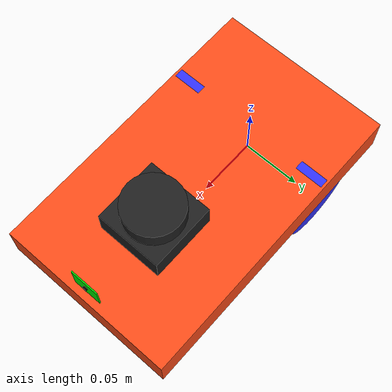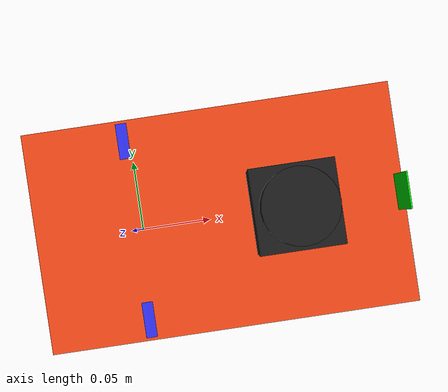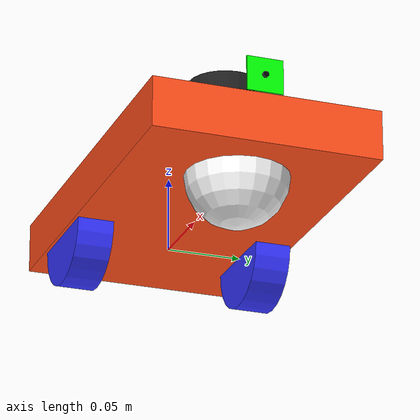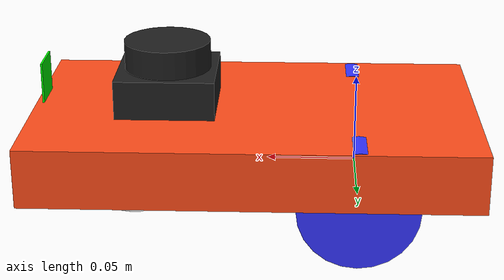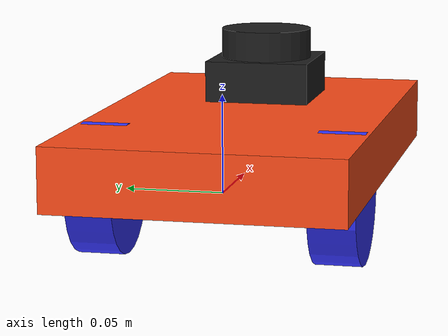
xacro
<?xml version="1.0"?>
<robot xmlns:xacro="http://www.ros.org/wiki/xacro" >

    <xacro:include filename="inertial_macros.xacro"/>
    <xacro:include filename="robot_properties.xacro"/>
    <xacro:property name="materials_included" value="false"/>
    <xacro:include filename="materials.xacro"/>
    <xacro:include filename="camera.xacro"/>
    <xacro:include filename="lidar.xacro"/>

    <!-- BASE LINK -->

    <link name="base_link">

    </link>

    <!-- BASE_FOOTPRINT LINK -->

    <joint name="base_footprint_joint" type="fixed">
        <parent link="base_link"/>
        <child link="base_footprint"/>
        <origin xyz="0 0 0" rpy="0 0 0"/>
    </joint>

    <link name="base_footprint">
    </link>

    <!-- CHASSIS LINK -->

    <joint name="chassis_joint" type="fixed">
        <parent link="base_link"/>
        <child link="chassis"/>
        <origin xyz="${-wheel_offset_x_from_chassis_link} 0 0" rpy="0 0 0"/>
        <!-- origin xyz="${-wheel_offset_x_from_chassis_link} 0 ${-wheel_offset_z_from_chassis_link}" rpy="0 0 0"/ -->
    </joint>

    <link name="chassis">
        <visual>
            <origin xyz="${chassis_length/2} 0 ${chassis_height/2}"/>
            <geometry>
                <box size="${chassis_length} ${chassis_width} ${chassis_height}"/>
            </geometry>
            <material name="my_orange"/>
        </visual>
        <collision>
            <origin xyz="${chassis_length/2} 0 ${chassis_height/2}"/>
            <geometry>
                <box size="${chassis_length} ${chassis_width} ${chassis_height}"/>
            </geometry>
        </collision>
        <xacro:inertial_box mass="0.5" x="${chassis_length}" y="${chassis_width}" z="${chassis_height}">
            <origin xyz="${chassis_length/2} 0 ${chassis_height/2}" rpy="0 0 0"/>
        </xacro:inertial_box>
    </link>

    <gazebo reference="chassis">
        <material>Gazebo/Orange</material>
    </gazebo>

    <!-- LEFT WHEEL LINK -->

    <joint name="left_wheel_joint" type="continuous">
        <parent link="base_link"/>
        <child link="left_wheel"/>
        <!-- origin xyz="0 ${wheel_offset_y_from_chassis_link} ${-wheel_offset_z_from_chassis_link}" rpy="-${pi/2} 0 0" / -->
        <origin xyz="0 ${wheel_offset_y_from_chassis_link} 0" rpy="-${pi/2} 0 0" />
        <axis xyz="0 0 1"/>
    </joint>

    <link name="left_wheel">
        <visual>
            <geometry>
                <cylinder radius="${wheel_radius}" length="${wheel_thickness}"/>
            </geometry>
            <material name="my_blue"/>
        </visual>
        <collision>
            <geometry>
                <sphere radius="${wheel_radius}"/>
            </geometry>
        </collision>
        <xacro:inertial_cylinder mass="${wheel_mass}" length="${wheel_thickness}" radius="${wheel_radius}">
            <origin xyz="0 0 0" rpy="0 0 0"/>
        </xacro:inertial_cylinder>
    </link>

    <gazebo reference="left_wheel">
        <material>Gazebo/Blue</material>
    </gazebo>

    <!-- RIGHT WHEEL LINK -->

    <joint name="right_wheel_joint" type="continuous">
        <parent link="base_link"/>
        <child link="right_wheel"/>
        <!--origin xyz="0 ${-wheel_offset_y_from_chassis_link} ${-wheel_offset_z_from_chassis_link}" rpy="${pi/2} 0 0" / -->
        <origin xyz="0 ${-wheel_offset_y_from_chassis_link} 0" rpy="${pi/2} 0 0" />
        <axis xyz="0 0 -1"/>
    </joint>

    <link name="right_wheel">
        <visual>
            <geometry>
                <cylinder radius="${wheel_radius}" length="${wheel_thickness}"/>
            </geometry>
            <material name="my_blue"/>
        </visual>
        <collision>
            <geometry>
                <sphere radius="${wheel_radius}"/>
            </geometry>
        </collision>
        <xacro:inertial_cylinder mass="${wheel_mass}" length="${wheel_thickness}" radius="${wheel_radius}">
            <origin xyz="0 0 0" rpy="0 0 0"/>
        </xacro:inertial_cylinder>
    </link>

    <gazebo reference="right_wheel">
        <material>Gazebo/Blue</material>
    </gazebo>

    <!-- CASTER WHEEL LINK -->

    <joint name="caster_wheel_joint" type="fixed">
        <parent link="base_link"/>
        <child link="caster_wheel"/>
        <!-- origin xyz="${caster_wheel_offset_x_from_chassis_link} 0 ${-caster_wheel_offset_z_from_chassis_link}"/ -->
        <origin xyz="${caster_wheel_offset_x_from_base_link} 0 0"/>
    </joint>

    <link name="caster_wheel">
        <visual>
            <geometry>
                <sphere radius="${caster_wheel_radius}"/>
            </geometry>
            <material name="my_white"/>
        </visual>
        <collision>
            <geometry>
                <sphere radius="${caster_wheel_radius}"/>
            </geometry>
        </collision>
        <xacro:inertial_sphere mass="${caster_wheel_mass}" radius="${caster_wheel_radius}">
            <origin xyz="0 0 0" rpy="0 0 0"/>
        </xacro:inertial_sphere>
    </link>

    <gazebo reference="caster_wheel">
        <material>Gazebo/White</material>
        <mu1 value="0.001"/>
        <mu2 value="0.001"/>
    </gazebo>

    <!-- CAMERA MODULE  -->
    <xacro:camera_module parent_link="chassis"/>

    <gazebo>
        <disable_collisions>
            <link1>chassis</link1>
            <link2>left_wheel</link2>
            <link3>right_wheel</link3>
        </disable_collisions>
    </gazebo>

</robot>

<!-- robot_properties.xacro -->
<robot xmlns:xacro="http://www.ros.org/wiki/xacro" >

<!-- Chassis properties -->

    <xacro:property name="chassis_length" value="0.251"/>
    <xacro:property name="chassis_width" value="0.150"/>
    <xacro:property name="chassis_height" value="0.033"/>
    <xacro:property name="chassis_mass" value="1.0"/>

<!-- Wheel properties -->
    <xacro:property name="wheel_radius" value="0.0335"/>
    <xacro:property name="wheel_thickness" value="0.024"/>
    <xacro:property name="wheel_mass" value="0.05"/>
    <xacro:property name="wheel_offset_x_from_chassis_link" value="0.068"/>
    <xacro:property name="wheel_offset_y_from_chassis_link" value="0.061"/>
    <xacro:property name="wheel_offset_z_from_chassis_link" value="0.065"/>

<!-- Castor Wheels-->
    <!-- xacro:property name="caster_wheel_radius" value="0.03"/ -->
    <xacro:property name="caster_wheel_radius" value="0.0335"/>
    <xacro:property name="caster_wheel_mass" value="0.01"/>
    <xacro:property name="caster_wheel_offset_x_from_base_link" value="0.128"/>
    <!-- xacro:property name="caster_wheel_offset_x_from_chassis_link" value="0.196"/ -->
    <!-- xacro:property name="caster_wheel_offset_z_from_chassis_link" value="0.01"/ -->

</robot>

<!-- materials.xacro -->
<robot xmlns:xacro="http://www.ros.org/wiki/xacro" >

  <xacro:if value= "${not materials_included}">
    <xacro:property name="materials_included" value="true"/>

    <material name="my_white">
      <color rgba="1 1 1 1" />
    </material>

    <material name="my_orange">
      <color rgba="1 0.3 0.1 1"/>
    </material>

    <material name="my_blue">
      <color rgba="0.2 0.2 1 1"/>
    </material>

    <material name="my_black">
      <color rgba="0 0 0 1"/>
    </material>

    <material name="my_red">
      <color rgba="1 0 0 1"/>
    </material>

    <material name="my_green">
      <color rgba="0 1 0 1"/>
    </material>

  </xacro:if>

</robot>

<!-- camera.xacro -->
<robot xmlns:xacro="http://www.ros.org/wiki/xacro" >

    <xacro:macro name="camera_module" params="parent_link">

        <joint name="camera_joint" type="fixed">
            <parent link="${parent_link}"/>
            <child link="camera_link"/>
            <origin xyz="0.245 0 0.048" rpy="0 0 0"/>
        </joint>

        <link name="camera_link">
            <visual>
                <geometry>
                    <box size="0.001 0.024 0.023"/>
                </geometry>
                <material name="my_green"/>
            </visual>
            <visual>
                <origin xyz="0.001 0 0" rpy="0 ${pi/2} 0"/>
                <geometry>
                    <cylinder radius="0.002" length="0.002"/>
                </geometry>
                <material name="my_black"/>
            </visual>
        </link>

        <joint name="camera_optical_joint" type="fixed">
            <origin xyz="0 0 0" rpy="${-pi/2} 0 ${-pi/2}" />
            <parent link="camera_link" />
            <child link="camera_link_optical" />
        </joint>

        <link name="camera_link_optical"></link>

        <gazebo reference="camera_link">
            <material>Gazebo/Green</material>

            <sensor name="camera" type="camera">
                <pose>0 0 0 0 0 0 </pose>
                <visualize>true</visualize>
                <update_rate>10 </update_rate>
                <camera>
                    <horizontal_fov>1.089</horizontal_fov>
                    <image>
                        <format>R8G8B8</format>    <!--8 bit data for each color channel-->
                        <width>640</width>
                        <height>480</height>
                    </image>
                    <clip>   <!--How near or far can the camera see-->
                        <near>0.05</near>
                        <far>8.0</far>
                    </clip>
                </camera>

                <plugin name="camera_controller" filename="libgazebo_ros_camera.so">
                    <frame_name>camera_link_optical</frame_name>
                </plugin>
            </sensor>
        </gazebo>

    </xacro:macro>

</robot>

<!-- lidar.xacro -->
<robot xmlns:xacro="http://www.ros.org/wiki/xacro" >

    <xacro:include filename="robot_properties.xacro"/>

    <joint name="laser_joint" type="fixed">
        <parent link="chassis"/>
        <child link="laser_frame"/>
        <origin xyz="0.175 0 ${chassis_height+0.03}" rpy="0 0 0"/>
    </joint>

    <link name="laser_frame">
        <visual>
            <geometry>
                <cylinder radius="0.0245" length="0.016"/>
            </geometry>
            <material name="black"/>
        </visual>
        <visual>
            <origin xyz="0 0 -0.019"/>
            <geometry>
                <box size="0.056 0.056 0.022"/>
            </geometry>
            <material name="black"/>
        </visual>
        <xacro:inertial_cylinder mass="0.1" length="0.04" radius="0.05">
            <origin xyz="0 0 0" rpy="0 0 0"/>
        </xacro:inertial_cylinder>
    </link>

    <gazebo reference="laser_frame">

        <sensor name="laser" type="ray">
            <pose> 0 0 0 0 0 0 </pose>
            <visualize>true</visualize>
            <update_rate>10</update_rate>
            <ray>
                <scan>
                    <horizontal>
                        <samples>500</samples>
                        <min_angle>-3.14</min_angle>
                        <max_angle>3.14</max_angle>
                    </horizontal>
                </scan>
                <range>
                    <min>0.05</min>
                    <max>6</max>
                </range>
            </ray>
            <plugin name="laser_controller" filename="libgazebo_ros_ray_sensor.so">
                <ros>
                    <argument>~/out:=/scan</argument>
                </ros>
                <output_type>sensor_msgs/LaserScan</output_type>
                <frame_name>laser_frame</frame_name>
            </plugin>
        </sensor>
    </gazebo>

</robot>
